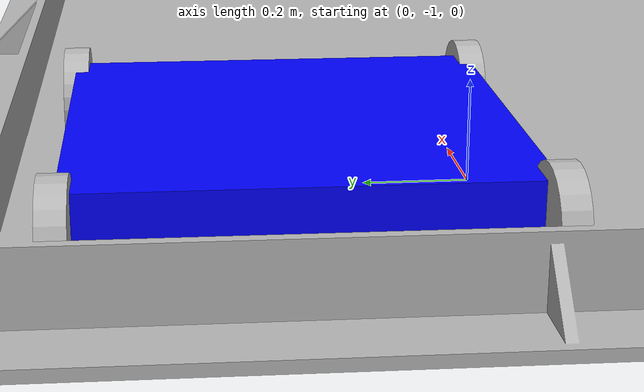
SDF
<?xml version="1.0" ?>
<sdf version="1.8">
  <world name="simple_world">
    <physics name="1ms" type="ignored">
      <max_step_size>0.001</max_step_size>
      <real_time_factor>1.0</real_time_factor>
    </physics>

    <plugin filename="gz-sim-physics-system" name="gz::sim::systems::Physics"/>
    <plugin filename="gz-sim-scene-broadcaster-system" name="gz::sim::systems::SceneBroadcaster"/>
    <plugin filename="gz-sim-user-commands-system" name="gz::sim::systems::UserCommands"/>
    <plugin filename="gz-sim-sensors-system" name="gz::sim::systems::Sensors"/>

    <light type="directional" name="sun">
      <cast_shadows>true</cast_shadows>
      <pose>0 0 10 0 0 0</pose>
      <diffuse>0.8 0.8 0.8 1</diffuse>
      <specular>0.2 0.2 0.2 1</specular>
      <attenuation>
        <range>1000</range>
        <constant>0.9</constant>
        <linear>0.01</linear>
        <quadratic>0.001</quadratic>
      </attenuation>
      <direction>-0.5 0.1 -0.9</direction>
    </light>

    <model name="ground_plane">
      <static>true</static>
      <link name="link">
        <collision name="collision">
          <pose>10 0 0 1.57 0 3.14</pose>
          <geometry>
            <mesh>
              <uri>field2025.obj</uri>
              <scale>1 1 1</scale>
            </mesh>
          </geometry>
          <surface>
            <friction>
              <ode>
                <mu>1.0</mu>       <!-- 摩擦係数（静止） -->
                <mu2>1.0</mu2>     <!-- 摩擦係数（動摩擦） -->
              </ode>
            </friction>
            <contact>
              <ode>
                <kp>100</kp>       <!-- バネ定数：硬さ -->
                <kd>1.0</kd>       <!-- ダンパー：跳ね返り抑える -->
              </ode>
            </contact>
          </surface>
        </collision>
        <visual name="visual">
          <pose>10 0 0 1.57 0 3.14</pose>
          <geometry>
            <mesh>
              <uri>field2025.obj</uri>
              <scale>1 1 1</scale>
            </mesh>
          </geometry>
        </visual>
      </link>
    </model>

    <model name="Robot">
      <static>false</static>
      <pose>-0.1 -0.65 0.1 0 0 0</pose>

      <link name="base_link">
        <inertial>
          <mass>28.0</mass>
          <inertia>
            <ixx>0.001</ixx><ixy>0</ixy><ixz>0</ixz>
            <iyy>0.001</iyy><iyz>0</iyz><izz>0.001</izz>
          </inertia>
        </inertial>
        <visual name="visual">
          <geometry><box><size>0.8 0.8 0.14</size></box></geometry>
          <material><ambient>0 0 1 1</ambient><diffuse>0 0 1 1</diffuse></material>
        </visual>
        <collision name="collision">
          <geometry><box><size>0.8 0.8 0.14</size></box></geometry>
        </collision>

        <sensor name="lidar" type="gpu_lidar">
          <pose>0.4 0 0.0 0 0 0</pose>
          <topic>lidar</topic>
          <update_rate>10</update_rate>
          <lidar>
              <scan>
                  <horizontal>
                      <samples>360</samples>
                      <resolution>1</resolution>
                      <min_angle>-3.14</min_angle>
                      <max_angle>3.14</max_angle>
                  </horizontal>
              </scan>
              <range>
                  <min>0.02</min>
                  <max>12.0</max>
                  <resolution>0.01</resolution>
              </range>
              <noise>
                  <type>gaussian</type>
                  <mean>0.0</mean>
                  <stddev>0.01</stddev>
              </noise>
          </lidar>
          <visualize>true</visualize>
          <always_on>1</always_on>
        </sensor>
      </link>

      <!-- FL -->
      <link name="fl_steer_link"><pose relative_to="base_link">0.4 0.4 0 0 0 0</pose></link>
      <link name="fl_wheel"><pose relative_to="fl_steer_link">0 0 0 -1.5708 0 0</pose>
        <inertial>
          <mass>0.5</mass>
        </inertial>
        <visual name="visual"><geometry><cylinder><radius>0.1</radius><length>0.05</length></cylinder></geometry></visual>
        <collision name="collision"><geometry><cylinder><radius>0.1</radius><length>0.05</length></cylinder></geometry></collision>
      </link>
      <joint name="fl_steer_joint" type="revolute"><parent>base_link</parent><child>fl_steer_link</child><axis><xyz>0 0 1</xyz></axis></joint>
      <joint name="fl_wheel_joint" type="revolute"><parent>fl_steer_link</parent><child>fl_wheel</child><axis><xyz>0 0 1</xyz></axis></joint>

      <!-- FR -->
      <link name="fr_steer_link"><pose relative_to="base_link">0.4 -0.4 0 0 0 0</pose></link>
      <link name="fr_wheel"><pose relative_to="fr_steer_link">0 0 0 -1.5708 0 0</pose>
        <inertial>
          <mass>0.5</mass>
        </inertial>
        <visual name="visual"><geometry><cylinder><radius>0.1</radius><length>0.05</length></cylinder></geometry></visual>
        <collision name="collision"><geometry><cylinder><radius>0.1</radius><length>0.05</length></cylinder></geometry></collision>
      </link>
      <joint name="fr_steer_joint" type="revolute"><parent>base_link</parent><child>fr_steer_link</child><axis><xyz>0 0 1</xyz></axis></joint>
      <joint name="fr_wheel_joint" type="revolute"><parent>fr_steer_link</parent><child>fr_wheel</child><axis><xyz>0 0 1</xyz></axis></joint>

      <!-- RL -->
      <link name="rl_steer_link"><pose relative_to="base_link">-0.4 0.4 0 0 0 0</pose></link>
      <link name="rl_wheel"><pose relative_to="rl_steer_link">0 0 0 -1.5708 0 0</pose>
        <inertial>
          <mass>0.5</mass>
        </inertial>
        <visual name="visual"><geometry><cylinder><radius>0.1</radius><length>0.05</length></cylinder></geometry></visual>
        <collision name="collision"><geometry><cylinder><radius>0.1</radius><length>0.05</length></cylinder></geometry></collision>
      </link>
      <joint name="rl_steer_joint" type="revolute"><parent>base_link</parent><child>rl_steer_link</child><axis><xyz>0 0 1</xyz></axis></joint>
      <joint name="rl_wheel_joint" type="revolute"><parent>rl_steer_link</parent><child>rl_wheel</child><axis><xyz>0 0 1</xyz></axis></joint>

      <!-- RR -->
      <link name="rr_steer_link"><pose relative_to="base_link">-0.4 -0.4 0 0 0 0</pose></link>
      <link name="rr_wheel"><pose relative_to="rr_steer_link">0 0 0 -1.5708 0 0</pose>
        <inertial>
          <mass>0.5</mass>
        </inertial>
        <visual name="visual"><geometry><cylinder><radius>0.1</radius><length>0.05</length></cylinder></geometry></visual>
        <collision name="collision"><geometry><cylinder><radius>0.1</radius><length>0.05</length></cylinder></geometry></collision>
      </link>
      <joint name="rr_steer_joint" type="revolute"><parent>base_link</parent><child>rr_steer_link</child><axis><xyz>0 0 1</xyz></axis></joint>
      <joint name="rr_wheel_joint" type="revolute"><parent>rr_steer_link</parent><child>rr_wheel</child><axis><xyz>0 0 1</xyz></axis></joint>

      <!-- 各ジョイント用プラグイン -->
      <!-- ステアリング joints -->
      <plugin filename="gz-sim-joint-controller-system" name="gz::sim::systems::JointController">
        <joint_name>fl_steer_joint</joint_name><topic>fl_steer_joint</topic>
      </plugin>
      <plugin filename="gz-sim-joint-controller-system" name="gz::sim::systems::JointController">
        <joint_name>fr_steer_joint</joint_name><topic>fr_steer_joint</topic>
      </plugin>
      <plugin filename="gz-sim-joint-controller-system" name="gz::sim::systems::JointController">
        <joint_name>rl_steer_joint</joint_name><topic>rl_steer_joint</topic>
      </plugin>
      <plugin filename="gz-sim-joint-controller-system" name="gz::sim::systems::JointController">
        <joint_name>rr_steer_joint</joint_name><topic>rr_steer_joint</topic>
      </plugin>

      <!-- 駆動 joints -->
      <plugin filename="gz-sim-joint-controller-system" name="gz::sim::systems::JointController">
        <joint_name>fl_wheel_joint</joint_name><topic>fl_wheel_joint/cmd_vel</topic>
        <p_gain>50.0</p_gain>
        <i_gain>0.0</i_gain>
        <d_gain>0.3</d_gain>
      </plugin>
      <plugin filename="gz-sim-joint-controller-system" name="gz::sim::systems::JointController">
        <joint_name>fr_wheel_joint</joint_name><topic>fr_wheel_joint/cmd_vel</topic>
        <p_gain>50.0</p_gain>
        <i_gain>0.0</i_gain>
        <d_gain>0.3</d_gain>
      </plugin>
      <plugin filename="gz-sim-joint-controller-system" name="gz::sim::systems::JointController">
        <joint_name>rl_wheel_joint</joint_name><topic>rl_wheel_joint/cmd_vel</topic>
        <p_gain>50.0</p_gain>
        <i_gain>0.0</i_gain>
        <d_gain>0.3</d_gain>
      </plugin>
      <plugin filename="gz-sim-joint-controller-system" name="gz::sim::systems::JointController">
        <joint_name>rr_wheel_joint</joint_name><topic>rr_wheel_joint/cmd_vel</topic>
        <p_gain>50.0</p_gain>
        <i_gain>0.0</i_gain>
        <d_gain>0.3</d_gain>
      </plugin>

      <plugin name="gz::sim::v8::systems::JointStatePublisher" filename="gz-sim-joint-state-publisher-system">
        <joint_name>fl_steer_joint</joint_name>
        <joint_name>fr_steer_joint</joint_name>
        <joint_name>rl_steer_joint</joint_name>
        <joint_name>rr_steer_joint</joint_name>
        <topic>steer_state</topic>
      </plugin>
      <plugin name="gz::sim::v8::systems::JointStatePublisher" filename="gz-sim-joint-state-publisher-system">
        <joint_name>fl_wheel_joint</joint_name>
        <joint_name>fr_wheel_joint</joint_name>
        <joint_name>rl_wheel_joint</joint_name>
        <joint_name>rr_wheel_joint</joint_name>
        <topic>wheel_state</topic>
      </plugin>
    </model>
  </world>
</sdf>
